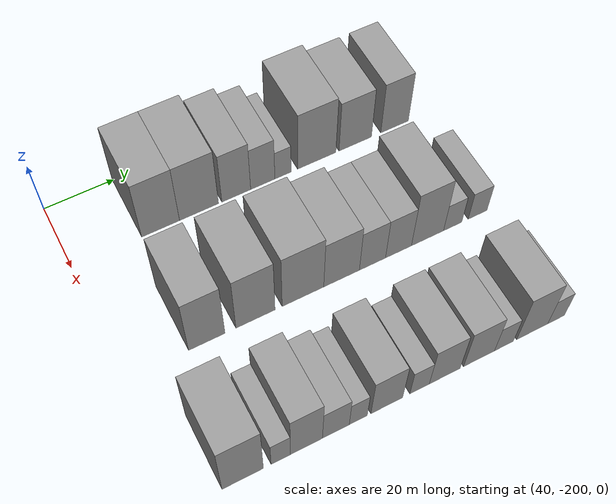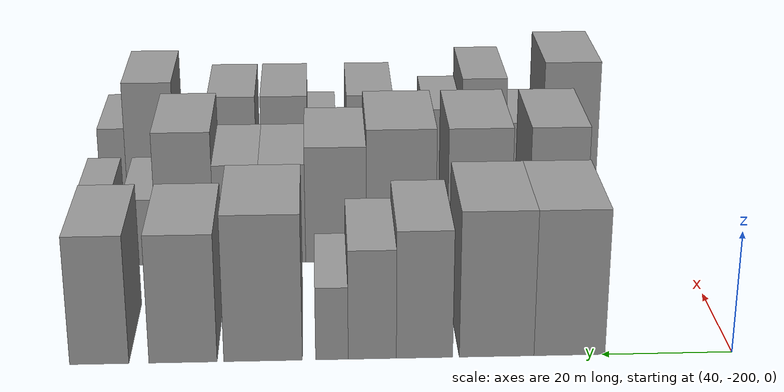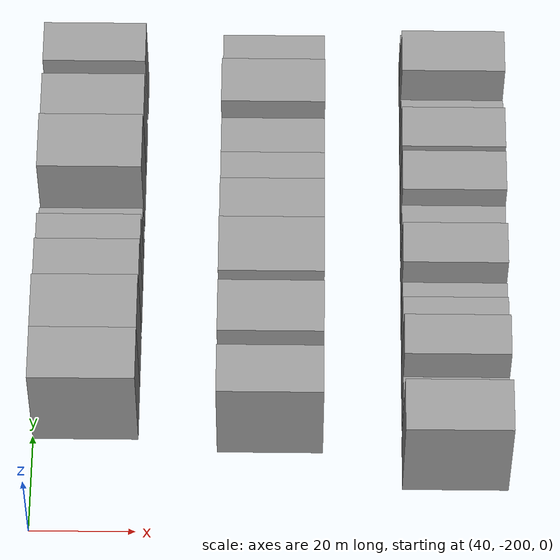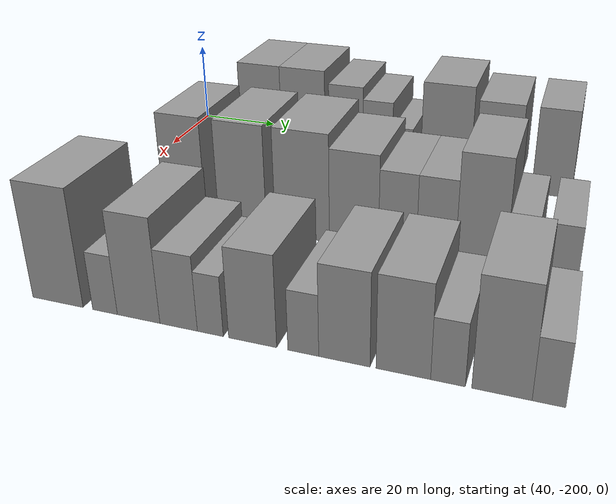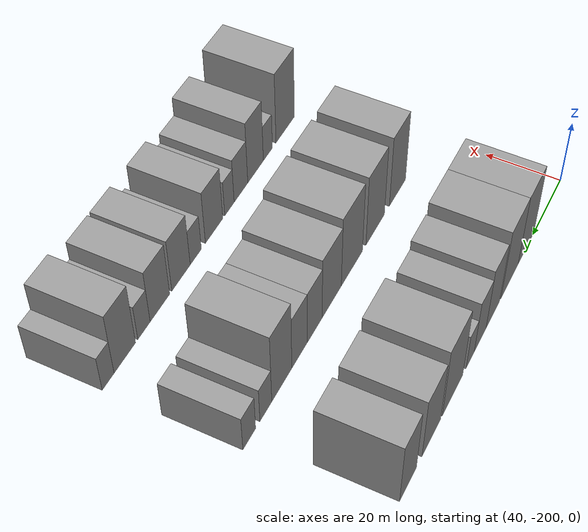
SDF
<sdf version="1.6">
 <world name="default">
  <model name="building_20">
   <static>1</static>
   <pose>50.0000 -174.9886 0 0.000000 0.000000 0.000000</pose>
   <link name="link">
    <pose>0 0 12.00 0 0 0</pose>
    <collision name="collision"><geometry><box><size>20.0000 10.8670 24.0000</size></box></geometry></collision>
    <visual name="visual">
     <cast_shadows>0</cast_shadows>
     <geometry><box><size>20.0000 10.8670 24.0000</size></box></geometry>
     <material>
      <script>
       <uri>model://grey_wall/materials/scripts</uri>
       <uri>model://grey_wall/materials/textures</uri>
       <name>vrc/grey_wall</name>
      </script>
     </material>
    </visual>
   </link>
  </model>
  <model name="building_21">
   <static>1</static>
   <pose>50.0000 -163.8630 0 0.000000 0.000000 0.000000</pose>
   <link name="link">
    <pose>0 0 12.00 0 0 0</pose>
    <collision name="collision"><geometry><box><size>20.0000 11.3841 24.0000</size></box></geometry></collision>
    <visual name="visual">
     <cast_shadows>0</cast_shadows>
     <geometry><box><size>20.0000 11.3841 24.0000</size></box></geometry>
     <material>
      <script>
       <uri>model://grey_wall/materials/scripts</uri>
       <uri>model://grey_wall/materials/textures</uri>
       <name>vrc/grey_wall</name>
      </script>
     </material>
    </visual>
   </link>
  </model>
  <model name="building_22">
   <static>1</static>
   <pose>50.0000 -152.8875 0 0.000000 0.000000 0.000000</pose>
   <link name="link">
    <pose>0 0 10.50 0 0 0</pose>
    <collision name="collision"><geometry><box><size>20.0000 8.5671 21.0000</size></box></geometry></collision>
    <visual name="visual">
     <cast_shadows>0</cast_shadows>
     <geometry><box><size>20.0000 8.5671 21.0000</size></box></geometry>
     <material>
      <script>
       <uri>model://grey_wall/materials/scripts</uri>
       <uri>model://grey_wall/materials/textures</uri>
       <name>vrc/grey_wall</name>
      </script>
     </material>
    </visual>
   </link>
  </model>
  <model name="building_23">
   <static>1</static>
   <pose>50.0000 -144.9525 0 0.000000 0.000000 0.000000</pose>
   <link name="link">
    <pose>0 0 9.00 0 0 0</pose>
    <collision name="collision"><geometry><box><size>20.0000 7.3028 18.0000</size></box></geometry></collision>
    <visual name="visual">
     <cast_shadows>0</cast_shadows>
     <geometry><box><size>20.0000 7.3028 18.0000</size></box></geometry>
     <material>
      <script>
       <uri>model://grey_wall/materials/scripts</uri>
       <uri>model://grey_wall/materials/textures</uri>
       <name>vrc/grey_wall</name>
      </script>
     </material>
    </visual>
   </link>
  </model>
  <model name="building_24">
   <static>1</static>
   <pose>50.0000 -138.8365 0 0.000000 0.000000 0.000000</pose>
   <link name="link">
    <pose>0 0 6.00 0 0 0</pose>
    <collision name="collision"><geometry><box><size>20.0000 4.9293 12.0000</size></box></geometry></collision>
    <visual name="visual">
     <cast_shadows>0</cast_shadows>
     <geometry><box><size>20.0000 4.9293 12.0000</size></box></geometry>
     <material>
      <script>
       <uri>model://grey_wall/materials/scripts</uri>
       <uri>model://grey_wall/materials/textures</uri>
       <name>vrc/grey_wall</name>
      </script>
     </material>
    </visual>
   </link>
  </model>
  <model name="building_25">
   <static>1</static>
   <pose>50.0000 -128.4378 0 0.000000 0.000000 0.000000</pose>
   <link name="link">
    <pose>0 0 12.00 0 0 0</pose>
    <collision name="collision"><geometry><box><size>20.0000 11.8682 24.0000</size></box></geometry></collision>
    <visual name="visual">
     <cast_shadows>0</cast_shadows>
     <geometry><box><size>20.0000 11.8682 24.0000</size></box></geometry>
     <material>
      <script>
       <uri>model://grey_wall/materials/scripts</uri>
       <uri>model://grey_wall/materials/textures</uri>
       <name>vrc/grey_wall</name>
      </script>
     </material>
    </visual>
   </link>
  </model>
  <model name="building_26">
   <static>1</static>
   <pose>50.0000 -116.3749 0 0.000000 0.000000 0.000000</pose>
   <link name="link">
    <pose>0 0 10.50 0 0 0</pose>
    <collision name="collision"><geometry><box><size>20.0000 10.2575 21.0000</size></box></geometry></collision>
    <visual name="visual">
     <cast_shadows>0</cast_shadows>
     <geometry><box><size>20.0000 10.2575 21.0000</size></box></geometry>
     <material>
      <script>
       <uri>model://grey_wall/materials/scripts</uri>
       <uri>model://grey_wall/materials/textures</uri>
       <name>vrc/grey_wall</name>
      </script>
     </material>
    </visual>
   </link>
  </model>
  <model name="building_27">
   <static>1</static>
   <pose>50.0000 -103.8052 0 0.000000 0.000000 0.000000</pose>
   <link name="link">
    <pose>0 0 10.50 0 0 0</pose>
    <collision name="collision"><geometry><box><size>20.0000 8.8818 21.0000</size></box></geometry></collision>
    <visual name="visual">
     <cast_shadows>0</cast_shadows>
     <geometry><box><size>20.0000 8.8818 21.0000</size></box></geometry>
     <material>
      <script>
       <uri>model://grey_wall/materials/scripts</uri>
       <uri>model://grey_wall/materials/textures</uri>
       <name>vrc/grey_wall</name>
      </script>
     </material>
    </visual>
   </link>
  </model>
  <model name="building_99">
   <static>1</static>
   <pose>85.0000 -178.0086 0 0.000000 0.000000 0.000000</pose>
   <link name="link">
    <pose>0 0 12.00 0 0 0</pose>
    <collision name="collision"><geometry><box><size>20.0000 9.9465 24.0000</size></box></geometry></collision>
    <visual name="visual">
     <cast_shadows>0</cast_shadows>
     <geometry><box><size>20.0000 9.9465 24.0000</size></box></geometry>
     <material>
      <script>
       <uri>model://grey_wall/materials/scripts</uri>
       <uri>model://grey_wall/materials/textures</uri>
       <name>vrc/grey_wall</name>
      </script>
     </material>
    </visual>
   </link>
  </model>
  <model name="building_100">
   <static>1</static>
   <pose>85.0000 -164.5697 0 0.000000 0.000000 0.000000</pose>
   <link name="link">
    <pose>0 0 12.00 0 0 0</pose>
    <collision name="collision"><geometry><box><size>20.0000 10.9312 24.0000</size></box></geometry></collision>
    <visual name="visual">
     <cast_shadows>0</cast_shadows>
     <geometry><box><size>20.0000 10.9312 24.0000</size></box></geometry>
     <material>
      <script>
       <uri>model://grey_wall/materials/scripts</uri>
       <uri>model://grey_wall/materials/textures</uri>
       <name>vrc/grey_wall</name>
      </script>
     </material>
    </visual>
   </link>
  </model>
  <model name="building_101">
   <static>1</static>
   <pose>85.0000 -151.1575 0 0.000000 0.000000 0.000000</pose>
   <link name="link">
    <pose>0 0 12.00 0 0 0</pose>
    <collision name="collision"><geometry><box><size>20.0000 11.8933 24.0000</size></box></geometry></collision>
    <visual name="visual">
     <cast_shadows>0</cast_shadows>
     <geometry><box><size>20.0000 11.8933 24.0000</size></box></geometry>
     <material>
      <script>
       <uri>model://grey_wall/materials/scripts</uri>
       <uri>model://grey_wall/materials/textures</uri>
       <name>vrc/grey_wall</name>
      </script>
     </material>
    </visual>
   </link>
  </model>
  <model name="building_102">
   <static>1</static>
   <pose>85.0000 -140.0071 0 0.000000 0.000000 0.000000</pose>
   <link name="link">
    <pose>0 0 10.50 0 0 0</pose>
    <collision name="collision"><geometry><box><size>20.0000 10.4074 21.0000</size></box></geometry></collision>
    <visual name="visual">
     <cast_shadows>0</cast_shadows>
     <geometry><box><size>20.0000 10.4074 21.0000</size></box></geometry>
     <material>
      <script>
       <uri>model://grey_wall/materials/scripts</uri>
       <uri>model://grey_wall/materials/textures</uri>
       <name>vrc/grey_wall</name>
      </script>
     </material>
    </visual>
   </link>
  </model>
  <model name="building_103">
   <static>1</static>
   <pose>85.0000 -130.9282 0 0.000000 0.000000 0.000000</pose>
   <link name="link">
    <pose>0 0 9.00 0 0 0</pose>
    <collision name="collision"><geometry><box><size>20.0000 7.7504 18.0000</size></box></geometry></collision>
    <visual name="visual">
     <cast_shadows>0</cast_shadows>
     <geometry><box><size>20.0000 7.7504 18.0000</size></box></geometry>
     <material>
      <script>
       <uri>model://grey_wall/materials/scripts</uri>
       <uri>model://grey_wall/materials/textures</uri>
       <name>vrc/grey_wall</name>
      </script>
     </material>
    </visual>
   </link>
  </model>
  <model name="building_104">
   <static>1</static>
   <pose>85.0000 -123.1555 0 0.000000 0.000000 0.000000</pose>
   <link name="link">
    <pose>0 0 9.00 0 0 0</pose>
    <collision name="collision"><geometry><box><size>20.0000 7.7949 18.0000</size></box></geometry></collision>
    <visual name="visual">
     <cast_shadows>0</cast_shadows>
     <geometry><box><size>20.0000 7.7949 18.0000</size></box></geometry>
     <material>
      <script>
       <uri>model://grey_wall/materials/scripts</uri>
       <uri>model://grey_wall/materials/textures</uri>
       <name>vrc/grey_wall</name>
      </script>
     </material>
    </visual>
   </link>
  </model>
  <model name="building_105">
   <static>1</static>
   <pose>85.0000 -114.3521 0 0.000000 0.000000 0.000000</pose>
   <link name="link">
    <pose>0 0 12.00 0 0 0</pose>
    <collision name="collision"><geometry><box><size>20.0000 9.8120 24.0000</size></box></geometry></collision>
    <visual name="visual">
     <cast_shadows>0</cast_shadows>
     <geometry><box><size>20.0000 9.8120 24.0000</size></box></geometry>
     <material>
      <script>
       <uri>model://grey_wall/materials/scripts</uri>
       <uri>model://grey_wall/materials/textures</uri>
       <name>vrc/grey_wall</name>
      </script>
     </material>
    </visual>
   </link>
  </model>
  <model name="building_106">
   <static>1</static>
   <pose>85.0000 -106.6279 0 0.000000 0.000000 0.000000</pose>
   <link name="link">
    <pose>0 0 6.00 0 0 0</pose>
    <collision name="collision"><geometry><box><size>20.0000 5.6365 12.0000</size></box></geometry></collision>
    <visual name="visual">
     <cast_shadows>0</cast_shadows>
     <geometry><box><size>20.0000 5.6365 12.0000</size></box></geometry>
     <material>
      <script>
       <uri>model://grey_wall/materials/scripts</uri>
       <uri>model://grey_wall/materials/textures</uri>
       <name>vrc/grey_wall</name>
      </script>
     </material>
    </visual>
   </link>
  </model>
  <model name="building_107">
   <static>1</static>
   <pose>85.0000 -98.8685 0 0.000000 0.000000 0.000000</pose>
   <link name="link">
    <pose>0 0 6.00 0 0 0</pose>
    <collision name="collision"><geometry><box><size>20.0000 5.8823 12.0000</size></box></geometry></collision>
    <visual name="visual">
     <cast_shadows>0</cast_shadows>
     <geometry><box><size>20.0000 5.8823 12.0000</size></box></geometry>
     <material>
      <script>
       <uri>model://grey_wall/materials/scripts</uri>
       <uri>model://grey_wall/materials/textures</uri>
       <name>vrc/grey_wall</name>
      </script>
     </material>
    </visual>
   </link>
  </model>
  <model name="building_174">
   <static>1</static>
   <pose>120.0000 -185.3029 0 0.000000 0.000000 0.000000</pose>
   <link name="link">
    <pose>0 0 12.00 0 0 0</pose>
    <collision name="collision"><geometry><box><size>20.0000 10.6075 24.0000</size></box></geometry></collision>
    <visual name="visual">
     <cast_shadows>0</cast_shadows>
     <geometry><box><size>20.0000 10.6075 24.0000</size></box></geometry>
     <material>
      <script>
       <uri>model://grey_wall/materials/scripts</uri>
       <uri>model://grey_wall/materials/textures</uri>
       <name>vrc/grey_wall</name>
      </script>
     </material>
    </visual>
   </link>
  </model>
  <model name="building_175">
   <static>1</static>
   <pose>120.0000 -175.4822 0 0.000000 0.000000 0.000000</pose>
   <link name="link">
    <pose>0 0 6.00 0 0 0</pose>
    <collision name="collision"><geometry><box><size>20.0000 5.0339 12.0000</size></box></geometry></collision>
    <visual name="visual">
     <cast_shadows>0</cast_shadows>
     <geometry><box><size>20.0000 5.0339 12.0000</size></box></geometry>
     <material>
      <script>
       <uri>model://grey_wall/materials/scripts</uri>
       <uri>model://grey_wall/materials/textures</uri>
       <name>vrc/grey_wall</name>
      </script>
     </material>
    </visual>
   </link>
  </model>
  <model name="building_176">
   <static>1</static>
   <pose>120.0000 -168.7279 0 0.000000 0.000000 0.000000</pose>
   <link name="link">
    <pose>0 0 10.50 0 0 0</pose>
    <collision name="collision"><geometry><box><size>20.0000 8.4747 21.0000</size></box></geometry></collision>
    <visual name="visual">
     <cast_shadows>0</cast_shadows>
     <geometry><box><size>20.0000 8.4747 21.0000</size></box></geometry>
     <material>
      <script>
       <uri>model://grey_wall/materials/scripts</uri>
       <uri>model://grey_wall/materials/textures</uri>
       <name>vrc/grey_wall</name>
      </script>
     </material>
    </visual>
   </link>
  </model>
  <model name="building_177">
   <static>1</static>
   <pose>120.0000 -160.8773 0 0.000000 0.000000 0.000000</pose>
   <link name="link">
    <pose>0 0 7.50 0 0 0</pose>
    <collision name="collision"><geometry><box><size>20.0000 7.2266 15.0000</size></box></geometry></collision>
    <visual name="visual">
     <cast_shadows>0</cast_shadows>
     <geometry><box><size>20.0000 7.2266 15.0000</size></box></geometry>
     <material>
      <script>
       <uri>model://grey_wall/materials/scripts</uri>
       <uri>model://grey_wall/materials/textures</uri>
       <name>vrc/grey_wall</name>
      </script>
     </material>
    </visual>
   </link>
  </model>
  <model name="building_178">
   <static>1</static>
   <pose>120.0000 -154.8233 0 0.000000 0.000000 0.000000</pose>
   <link name="link">
    <pose>0 0 6.00 0 0 0</pose>
    <collision name="collision"><geometry><box><size>20.0000 4.8812 12.0000</size></box></geometry></collision>
    <visual name="visual">
     <cast_shadows>0</cast_shadows>
     <geometry><box><size>20.0000 4.8812 12.0000</size></box></geometry>
     <material>
      <script>
       <uri>model://grey_wall/materials/scripts</uri>
       <uri>model://grey_wall/materials/textures</uri>
       <name>vrc/grey_wall</name>
      </script>
     </material>
    </visual>
   </link>
  </model>
  <model name="building_179">
   <static>1</static>
   <pose>120.0000 -146.9950 0 0.000000 0.000000 0.000000</pose>
   <link name="link">
    <pose>0 0 9.00 0 0 0</pose>
    <collision name="collision"><geometry><box><size>20.0000 8.7755 18.0000</size></box></geometry></collision>
    <visual name="visual">
     <cast_shadows>0</cast_shadows>
     <geometry><box><size>20.0000 8.7755 18.0000</size></box></geometry>
     <material>
      <script>
       <uri>model://grey_wall/materials/scripts</uri>
       <uri>model://grey_wall/materials/textures</uri>
       <name>vrc/grey_wall</name>
      </script>
     </material>
    </visual>
   </link>
  </model>
  <model name="building_180">
   <static>1</static>
   <pose>120.0000 -137.8871 0 0.000000 0.000000 0.000000</pose>
   <link name="link">
    <pose>0 0 6.00 0 0 0</pose>
    <collision name="collision"><geometry><box><size>20.0000 5.4401 12.0000</size></box></geometry></collision>
    <visual name="visual">
     <cast_shadows>0</cast_shadows>
     <geometry><box><size>20.0000 5.4401 12.0000</size></box></geometry>
     <material>
      <script>
       <uri>model://grey_wall/materials/scripts</uri>
       <uri>model://grey_wall/materials/textures</uri>
       <name>vrc/grey_wall</name>
      </script>
     </material>
    </visual>
   </link>
  </model>
  <model name="building_181">
   <static>1</static>
   <pose>120.0000 -130.7833 0 0.000000 0.000000 0.000000</pose>
   <link name="link">
    <pose>0 0 9.00 0 0 0</pose>
    <collision name="collision"><geometry><box><size>20.0000 8.7676 18.0000</size></box></geometry></collision>
    <visual name="visual">
     <cast_shadows>0</cast_shadows>
     <geometry><box><size>20.0000 8.7676 18.0000</size></box></geometry>
     <material>
      <script>
       <uri>model://grey_wall/materials/scripts</uri>
       <uri>model://grey_wall/materials/textures</uri>
       <name>vrc/grey_wall</name>
      </script>
     </material>
    </visual>
   </link>
  </model>
  <model name="building_182">
   <static>1</static>
   <pose>120.0000 -120.9175 0 0.000000 0.000000 0.000000</pose>
   <link name="link">
    <pose>0 0 9.00 0 0 0</pose>
    <collision name="collision"><geometry><box><size>20.0000 8.9641 18.0000</size></box></geometry></collision>
    <visual name="visual">
     <cast_shadows>0</cast_shadows>
     <geometry><box><size>20.0000 8.9641 18.0000</size></box></geometry>
     <material>
      <script>
       <uri>model://grey_wall/materials/scripts</uri>
       <uri>model://grey_wall/materials/textures</uri>
       <name>vrc/grey_wall</name>
      </script>
     </material>
    </visual>
   </link>
  </model>
  <model name="building_183">
   <static>1</static>
   <pose>120.0000 -113.6736 0 0.000000 0.000000 0.000000</pose>
   <link name="link">
    <pose>0 0 6.00 0 0 0</pose>
    <collision name="collision"><geometry><box><size>20.0000 5.5237 12.0000</size></box></geometry></collision>
    <visual name="visual">
     <cast_shadows>0</cast_shadows>
     <geometry><box><size>20.0000 5.5237 12.0000</size></box></geometry>
     <material>
      <script>
       <uri>model://grey_wall/materials/scripts</uri>
       <uri>model://grey_wall/materials/textures</uri>
       <name>vrc/grey_wall</name>
      </script>
     </material>
    </visual>
   </link>
  </model>
  <model name="building_184">
   <static>1</static>
   <pose>120.0000 -105.2766 0 0.000000 0.000000 0.000000</pose>
   <link name="link">
    <pose>0 0 10.50 0 0 0</pose>
    <collision name="collision"><geometry><box><size>20.0000 9.2703 21.0000</size></box></geometry></collision>
    <visual name="visual">
     <cast_shadows>0</cast_shadows>
     <geometry><box><size>20.0000 9.2703 21.0000</size></box></geometry>
     <material>
      <script>
       <uri>model://grey_wall/materials/scripts</uri>
       <uri>model://grey_wall/materials/textures</uri>
       <name>vrc/grey_wall</name>
      </script>
     </material>
    </visual>
   </link>
  </model>
  <model name="building_185">
   <static>1</static>
   <pose>120.0000 -98.1300 0 0.000000 0.000000 0.000000</pose>
   <link name="link">
    <pose>0 0 6.00 0 0 0</pose>
    <collision name="collision"><geometry><box><size>20.0000 5.0229 12.0000</size></box></geometry></collision>
    <visual name="visual">
     <cast_shadows>0</cast_shadows>
     <geometry><box><size>20.0000 5.0229 12.0000</size></box></geometry>
     <material>
      <script>
       <uri>model://grey_wall/materials/scripts</uri>
       <uri>model://grey_wall/materials/textures</uri>
       <name>vrc/grey_wall</name>
      </script>
     </material>
    </visual>
   </link>
  </model>
 </world>
</sdf>
